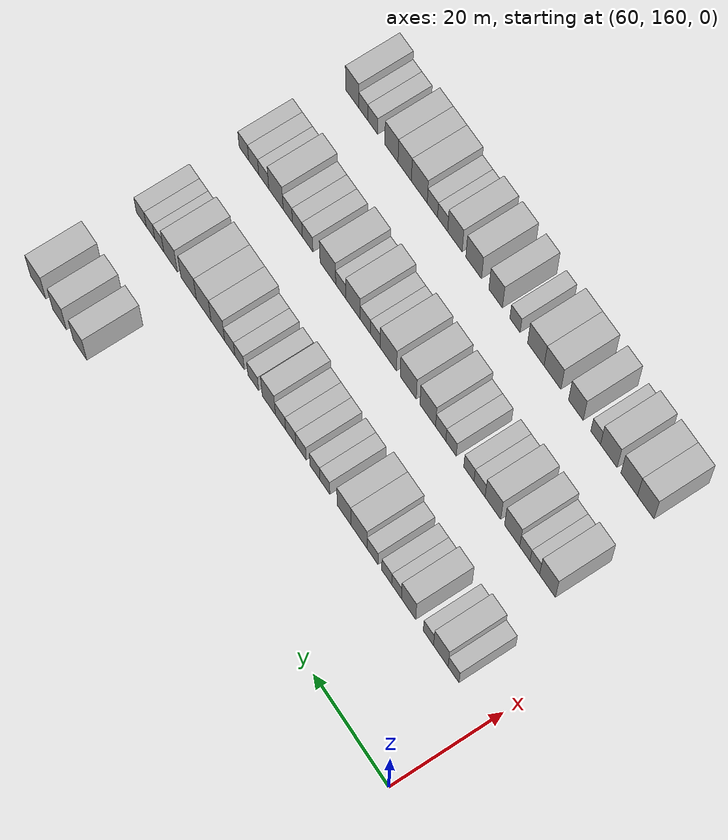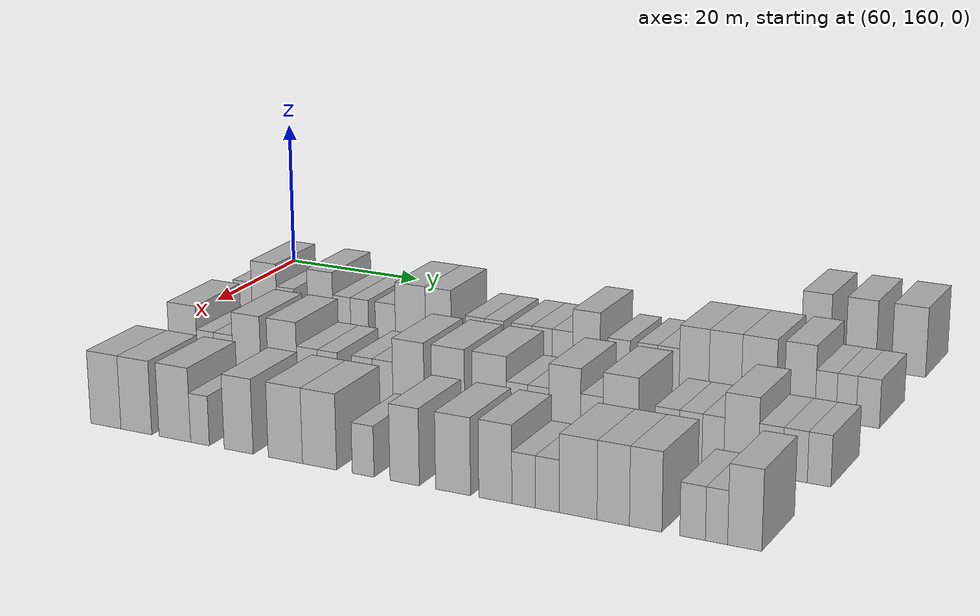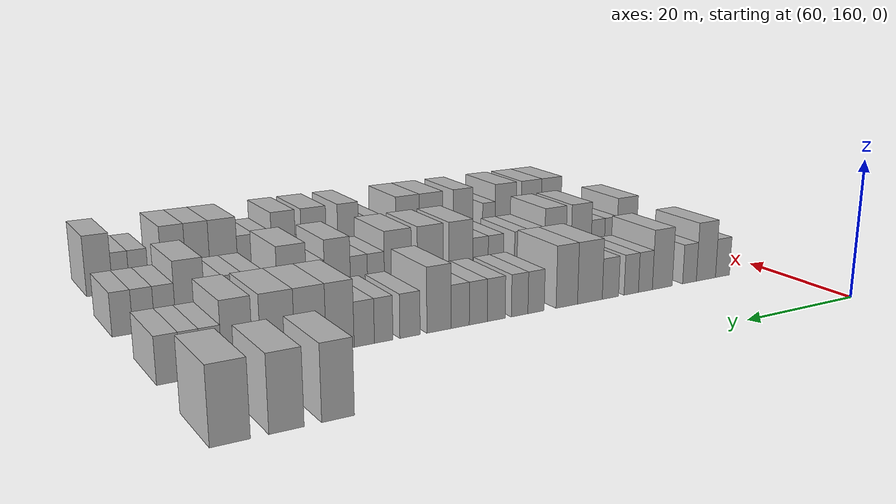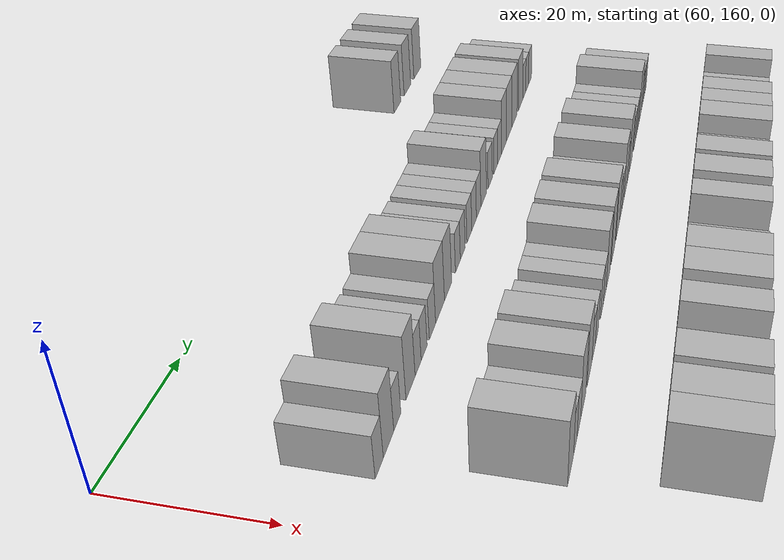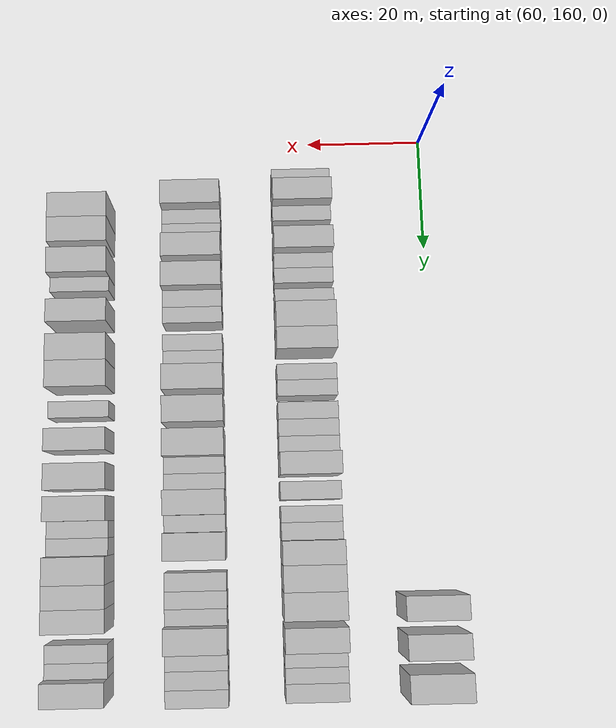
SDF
<sdf version="1.6">
 <world name="default">
  <model name="building_502">
   <static>1</static>
   <pose>63.0000 241.3219 0 0.000000 0.000000 0.000000</pose>
   <link name="link">
    <pose>0 0 4.50 0 0 0</pose>
    <collision name="collision"><geometry><box><size>10.0000 3.8423 9.0000</size></box></geometry></collision>
    <visual name="visual">
     <cast_shadows>0</cast_shadows>
     <geometry><box><size>10.0000 3.8423 9.0000</size></box></geometry>
     <material>
      <script>
       <uri>model://HANNAS_wall/materials/scripts</uri>
       <uri>model://HANNAS_wall/materials/textures</uri>
       <name>vrc/HANNAS_wall</name>
      </script>
     </material>
    </visual>
   </link>
  </model>
  <model name="building_503">
   <static>1</static>
   <pose>63.0000 247.2206 0 0.000000 0.000000 0.000000</pose>
   <link name="link">
    <pose>0 0 4.50 0 0 0</pose>
    <collision name="collision"><geometry><box><size>10.0000 3.9550 9.0000</size></box></geometry></collision>
    <visual name="visual">
     <cast_shadows>0</cast_shadows>
     <geometry><box><size>10.0000 3.9550 9.0000</size></box></geometry>
     <material>
      <script>
       <uri>model://HANNAS_wall/materials/scripts</uri>
       <uri>model://HANNAS_wall/materials/textures</uri>
       <name>vrc/HANNAS_wall</name>
      </script>
     </material>
    </visual>
   </link>
  </model>
  <model name="building_504">
   <static>1</static>
   <pose>63.0000 253.3838 0 0.000000 0.000000 0.000000</pose>
   <link name="link">
    <pose>0 0 4.50 0 0 0</pose>
    <collision name="collision"><geometry><box><size>10.0000 4.3716 9.0000</size></box></geometry></collision>
    <visual name="visual">
     <cast_shadows>0</cast_shadows>
     <geometry><box><size>10.0000 4.3716 9.0000</size></box></geometry>
     <material>
      <script>
       <uri>model://HANNAS_wall/materials/scripts</uri>
       <uri>model://HANNAS_wall/materials/textures</uri>
       <name>vrc/HANNAS_wall</name>
      </script>
     </material>
    </visual>
   </link>
  </model>
  <model name="building_665">
   <static>1</static>
   <pose>82.0000 168.6645 0 0.000000 0.000000 0.000000</pose>
   <link name="link">
    <pose>0 0 3.00 0 0 0</pose>
    <collision name="collision"><geometry><box><size>10.0000 2.8448 6.0000</size></box></geometry></collision>
    <visual name="visual">
     <cast_shadows>0</cast_shadows>
     <geometry><box><size>10.0000 2.8448 6.0000</size></box></geometry>
     <material>
      <script>
       <uri>model://HANNAS_wall/materials/scripts</uri>
       <uri>model://HANNAS_wall/materials/textures</uri>
       <name>vrc/HANNAS_wall</name>
      </script>
     </material>
    </visual>
   </link>
  </model>
  <model name="building_666">
   <static>1</static>
   <pose>82.0000 171.9915 0 0.000000 0.000000 0.000000</pose>
   <link name="link">
    <pose>0 0 4.50 0 0 0</pose>
    <collision name="collision"><geometry><box><size>10.0000 3.8090 9.0000</size></box></geometry></collision>
    <visual name="visual">
     <cast_shadows>0</cast_shadows>
     <geometry><box><size>10.0000 3.8090 9.0000</size></box></geometry>
     <material>
      <script>
       <uri>model://HANNAS_wall/materials/scripts</uri>
       <uri>model://HANNAS_wall/materials/textures</uri>
       <name>vrc/HANNAS_wall</name>
      </script>
     </material>
    </visual>
   </link>
  </model>
  <model name="building_667">
   <static>1</static>
   <pose>82.0000 175.2428 0 0.000000 0.000000 0.000000</pose>
   <link name="link">
    <pose>0 0 3.00 0 0 0</pose>
    <collision name="collision"><geometry><box><size>10.0000 2.6935 6.0000</size></box></geometry></collision>
    <visual name="visual">
     <cast_shadows>0</cast_shadows>
     <geometry><box><size>10.0000 2.6935 6.0000</size></box></geometry>
     <material>
      <script>
       <uri>model://HANNAS_wall/materials/scripts</uri>
       <uri>model://HANNAS_wall/materials/textures</uri>
       <name>vrc/HANNAS_wall</name>
      </script>
     </material>
    </visual>
   </link>
  </model>
  <model name="building_668">
   <static>1</static>
   <pose>82.0000 180.4787 0 0.000000 0.000000 0.000000</pose>
   <link name="link">
    <pose>0 0 4.50 0 0 0</pose>
    <collision name="collision"><geometry><box><size>10.0000 3.7783 9.0000</size></box></geometry></collision>
    <visual name="visual">
     <cast_shadows>0</cast_shadows>
     <geometry><box><size>10.0000 3.7783 9.0000</size></box></geometry>
     <material>
      <script>
       <uri>model://HANNAS_wall/materials/scripts</uri>
       <uri>model://HANNAS_wall/materials/textures</uri>
       <name>vrc/HANNAS_wall</name>
      </script>
     </material>
    </visual>
   </link>
  </model>
  <model name="building_669">
   <static>1</static>
   <pose>82.0000 183.6699 0 0.000000 0.000000 0.000000</pose>
   <link name="link">
    <pose>0 0 3.00 0 0 0</pose>
    <collision name="collision"><geometry><box><size>10.0000 2.6042 6.0000</size></box></geometry></collision>
    <visual name="visual">
     <cast_shadows>0</cast_shadows>
     <geometry><box><size>10.0000 2.6042 6.0000</size></box></geometry>
     <material>
      <script>
       <uri>model://HANNAS_wall/materials/scripts</uri>
       <uri>model://HANNAS_wall/materials/textures</uri>
       <name>vrc/HANNAS_wall</name>
      </script>
     </material>
    </visual>
   </link>
  </model>
  <model name="building_670">
   <static>1</static>
   <pose>82.0000 186.2871 0 0.000000 0.000000 0.000000</pose>
   <link name="link">
    <pose>0 0 3.00 0 0 0</pose>
    <collision name="collision"><geometry><box><size>10.0000 2.6302 6.0000</size></box></geometry></collision>
    <visual name="visual">
     <cast_shadows>0</cast_shadows>
     <geometry><box><size>10.0000 2.6302 6.0000</size></box></geometry>
     <material>
      <script>
       <uri>model://HANNAS_wall/materials/scripts</uri>
       <uri>model://HANNAS_wall/materials/textures</uri>
       <name>vrc/HANNAS_wall</name>
      </script>
     </material>
    </visual>
   </link>
  </model>
  <model name="building_671">
   <static>1</static>
   <pose>82.0000 190.0677 0 0.000000 0.000000 0.000000</pose>
   <link name="link">
    <pose>0 0 3.00 0 0 0</pose>
    <collision name="collision"><geometry><box><size>10.0000 2.9310 6.0000</size></box></geometry></collision>
    <visual name="visual">
     <cast_shadows>0</cast_shadows>
     <geometry><box><size>10.0000 2.9310 6.0000</size></box></geometry>
     <material>
      <script>
       <uri>model://HANNAS_wall/materials/scripts</uri>
       <uri>model://HANNAS_wall/materials/textures</uri>
       <name>vrc/HANNAS_wall</name>
      </script>
     </material>
    </visual>
   </link>
  </model>
  <model name="building_672">
   <static>1</static>
   <pose>82.0000 193.7044 0 0.000000 0.000000 0.000000</pose>
   <link name="link">
    <pose>0 0 4.50 0 0 0</pose>
    <collision name="collision"><geometry><box><size>10.0000 4.3425 9.0000</size></box></geometry></collision>
    <visual name="visual">
     <cast_shadows>0</cast_shadows>
     <geometry><box><size>10.0000 4.3425 9.0000</size></box></geometry>
     <material>
      <script>
       <uri>model://HANNAS_wall/materials/scripts</uri>
       <uri>model://HANNAS_wall/materials/textures</uri>
       <name>vrc/HANNAS_wall</name>
      </script>
     </material>
    </visual>
   </link>
  </model>
  <model name="building_673">
   <static>1</static>
   <pose>82.0000 197.7130 0 0.000000 0.000000 0.000000</pose>
   <link name="link">
    <pose>0 0 4.50 0 0 0</pose>
    <collision name="collision"><geometry><box><size>10.0000 3.6748 9.0000</size></box></geometry></collision>
    <visual name="visual">
     <cast_shadows>0</cast_shadows>
     <geometry><box><size>10.0000 3.6748 9.0000</size></box></geometry>
     <material>
      <script>
       <uri>model://HANNAS_wall/materials/scripts</uri>
       <uri>model://HANNAS_wall/materials/textures</uri>
       <name>vrc/HANNAS_wall</name>
      </script>
     </material>
    </visual>
   </link>
  </model>
  <model name="building_674">
   <static>1</static>
   <pose>82.0000 202.9010 0 0.000000 0.000000 0.000000</pose>
   <link name="link">
    <pose>0 0 3.00 0 0 0</pose>
    <collision name="collision"><geometry><box><size>10.0000 2.7012 6.0000</size></box></geometry></collision>
    <visual name="visual">
     <cast_shadows>0</cast_shadows>
     <geometry><box><size>10.0000 2.7012 6.0000</size></box></geometry>
     <material>
      <script>
       <uri>model://HANNAS_wall/materials/scripts</uri>
       <uri>model://HANNAS_wall/materials/textures</uri>
       <name>vrc/HANNAS_wall</name>
      </script>
     </material>
    </visual>
   </link>
  </model>
  <model name="building_675">
   <static>1</static>
   <pose>82.0000 205.6040 0 0.000000 0.000000 0.000000</pose>
   <link name="link">
    <pose>0 0 3.00 0 0 0</pose>
    <collision name="collision"><geometry><box><size>10.0000 2.7048 6.0000</size></box></geometry></collision>
    <visual name="visual">
     <cast_shadows>0</cast_shadows>
     <geometry><box><size>10.0000 2.7048 6.0000</size></box></geometry>
     <material>
      <script>
       <uri>model://HANNAS_wall/materials/scripts</uri>
       <uri>model://HANNAS_wall/materials/textures</uri>
       <name>vrc/HANNAS_wall</name>
      </script>
     </material>
    </visual>
   </link>
  </model>
  <model name="building_676">
   <static>1</static>
   <pose>82.0000 209.3820 0 0.000000 0.000000 0.000000</pose>
   <link name="link">
    <pose>0 0 3.00 0 0 0</pose>
    <collision name="collision"><geometry><box><size>10.0000 2.8511 6.0000</size></box></geometry></collision>
    <visual name="visual">
     <cast_shadows>0</cast_shadows>
     <geometry><box><size>10.0000 2.8511 6.0000</size></box></geometry>
     <material>
      <script>
       <uri>model://HANNAS_wall/materials/scripts</uri>
       <uri>model://HANNAS_wall/materials/textures</uri>
       <name>vrc/HANNAS_wall</name>
      </script>
     </material>
    </visual>
   </link>
  </model>
  <model name="building_677">
   <static>1</static>
   <pose>82.0000 212.2153 0 0.000000 0.000000 0.000000</pose>
   <link name="link">
    <pose>0 0 3.00 0 0 0</pose>
    <collision name="collision"><geometry><box><size>10.0000 2.8153 6.0000</size></box></geometry></collision>
    <visual name="visual">
     <cast_shadows>0</cast_shadows>
     <geometry><box><size>10.0000 2.8153 6.0000</size></box></geometry>
     <material>
      <script>
       <uri>model://HANNAS_wall/materials/scripts</uri>
       <uri>model://HANNAS_wall/materials/textures</uri>
       <name>vrc/HANNAS_wall</name>
      </script>
     </material>
    </visual>
   </link>
  </model>
  <model name="building_678">
   <static>1</static>
   <pose>82.0000 215.0192 0 0.000000 0.000000 0.000000</pose>
   <link name="link">
    <pose>0 0 3.00 0 0 0</pose>
    <collision name="collision"><geometry><box><size>10.0000 2.7925 6.0000</size></box></geometry></collision>
    <visual name="visual">
     <cast_shadows>0</cast_shadows>
     <geometry><box><size>10.0000 2.7925 6.0000</size></box></geometry>
     <material>
      <script>
       <uri>model://HANNAS_wall/materials/scripts</uri>
       <uri>model://HANNAS_wall/materials/textures</uri>
       <name>vrc/HANNAS_wall</name>
      </script>
     </material>
    </visual>
   </link>
  </model>
  <model name="building_679">
   <static>1</static>
   <pose>82.0000 218.2377 0 0.000000 0.000000 0.000000</pose>
   <link name="link">
    <pose>0 0 4.50 0 0 0</pose>
    <collision name="collision"><geometry><box><size>10.0000 3.6446 9.0000</size></box></geometry></collision>
    <visual name="visual">
     <cast_shadows>0</cast_shadows>
     <geometry><box><size>10.0000 3.6446 9.0000</size></box></geometry>
     <material>
      <script>
       <uri>model://HANNAS_wall/materials/scripts</uri>
       <uri>model://HANNAS_wall/materials/textures</uri>
       <name>vrc/HANNAS_wall</name>
      </script>
     </material>
    </visual>
   </link>
  </model>
  <model name="building_680">
   <static>1</static>
   <pose>82.0000 222.5443 0 0.000000 0.000000 0.000000</pose>
   <link name="link">
    <pose>0 0 3.00 0 0 0</pose>
    <collision name="collision"><geometry><box><size>10.0000 2.9686 6.0000</size></box></geometry></collision>
    <visual name="visual">
     <cast_shadows>0</cast_shadows>
     <geometry><box><size>10.0000 2.9686 6.0000</size></box></geometry>
     <material>
      <script>
       <uri>model://HANNAS_wall/materials/scripts</uri>
       <uri>model://HANNAS_wall/materials/textures</uri>
       <name>vrc/HANNAS_wall</name>
      </script>
     </material>
    </visual>
   </link>
  </model>
  <model name="building_681">
   <static>1</static>
   <pose>82.0000 226.3462 0 0.000000 0.000000 0.000000</pose>
   <link name="link">
    <pose>0 0 3.00 0 0 0</pose>
    <collision name="collision"><geometry><box><size>10.0000 2.6352 6.0000</size></box></geometry></collision>
    <visual name="visual">
     <cast_shadows>0</cast_shadows>
     <geometry><box><size>10.0000 2.6352 6.0000</size></box></geometry>
     <material>
      <script>
       <uri>model://HANNAS_wall/materials/scripts</uri>
       <uri>model://HANNAS_wall/materials/textures</uri>
       <name>vrc/HANNAS_wall</name>
      </script>
     </material>
    </visual>
   </link>
  </model>
  <model name="building_682">
   <static>1</static>
   <pose>82.0000 229.0832 0 0.000000 0.000000 0.000000</pose>
   <link name="link">
    <pose>0 0 3.00 0 0 0</pose>
    <collision name="collision"><geometry><box><size>10.0000 2.8388 6.0000</size></box></geometry></collision>
    <visual name="visual">
     <cast_shadows>0</cast_shadows>
     <geometry><box><size>10.0000 2.8388 6.0000</size></box></geometry>
     <material>
      <script>
       <uri>model://HANNAS_wall/materials/scripts</uri>
       <uri>model://HANNAS_wall/materials/textures</uri>
       <name>vrc/HANNAS_wall</name>
      </script>
     </material>
    </visual>
   </link>
  </model>
  <model name="building_683">
   <static>1</static>
   <pose>82.0000 232.4106 0 0.000000 0.000000 0.000000</pose>
   <link name="link">
    <pose>0 0 4.50 0 0 0</pose>
    <collision name="collision"><geometry><box><size>10.0000 3.8159 9.0000</size></box></geometry></collision>
    <visual name="visual">
     <cast_shadows>0</cast_shadows>
     <geometry><box><size>10.0000 3.8159 9.0000</size></box></geometry>
     <material>
      <script>
       <uri>model://HANNAS_wall/materials/scripts</uri>
       <uri>model://HANNAS_wall/materials/textures</uri>
       <name>vrc/HANNAS_wall</name>
      </script>
     </material>
    </visual>
   </link>
  </model>
  <model name="building_684">
   <static>1</static>
   <pose>82.0000 236.3957 0 0.000000 0.000000 0.000000</pose>
   <link name="link">
    <pose>0 0 4.50 0 0 0</pose>
    <collision name="collision"><geometry><box><size>10.0000 4.1543 9.0000</size></box></geometry></collision>
    <visual name="visual">
     <cast_shadows>0</cast_shadows>
     <geometry><box><size>10.0000 4.1543 9.0000</size></box></geometry>
     <material>
      <script>
       <uri>model://HANNAS_wall/materials/scripts</uri>
       <uri>model://HANNAS_wall/materials/textures</uri>
       <name>vrc/HANNAS_wall</name>
      </script>
     </material>
    </visual>
   </link>
  </model>
  <model name="building_685">
   <static>1</static>
   <pose>82.0000 240.6658 0 0.000000 0.000000 0.000000</pose>
   <link name="link">
    <pose>0 0 4.50 0 0 0</pose>
    <collision name="collision"><geometry><box><size>10.0000 4.3861 9.0000</size></box></geometry></collision>
    <visual name="visual">
     <cast_shadows>0</cast_shadows>
     <geometry><box><size>10.0000 4.3861 9.0000</size></box></geometry>
     <material>
      <script>
       <uri>model://HANNAS_wall/materials/scripts</uri>
       <uri>model://HANNAS_wall/materials/textures</uri>
       <name>vrc/HANNAS_wall</name>
      </script>
     </material>
    </visual>
   </link>
  </model>
  <model name="building_686">
   <static>1</static>
   <pose>82.0000 245.7829 0 0.000000 0.000000 0.000000</pose>
   <link name="link">
    <pose>0 0 4.50 0 0 0</pose>
    <collision name="collision"><geometry><box><size>10.0000 3.8481 9.0000</size></box></geometry></collision>
    <visual name="visual">
     <cast_shadows>0</cast_shadows>
     <geometry><box><size>10.0000 3.8481 9.0000</size></box></geometry>
     <material>
      <script>
       <uri>model://HANNAS_wall/materials/scripts</uri>
       <uri>model://HANNAS_wall/materials/textures</uri>
       <name>vrc/HANNAS_wall</name>
      </script>
     </material>
    </visual>
   </link>
  </model>
  <model name="building_687">
   <static>1</static>
   <pose>82.0000 249.0033 0 0.000000 0.000000 0.000000</pose>
   <link name="link">
    <pose>0 0 3.00 0 0 0</pose>
    <collision name="collision"><geometry><box><size>10.0000 2.5929 6.0000</size></box></geometry></collision>
    <visual name="visual">
     <cast_shadows>0</cast_shadows>
     <geometry><box><size>10.0000 2.5929 6.0000</size></box></geometry>
     <material>
      <script>
       <uri>model://HANNAS_wall/materials/scripts</uri>
       <uri>model://HANNAS_wall/materials/textures</uri>
       <name>vrc/HANNAS_wall</name>
      </script>
     </material>
    </visual>
   </link>
  </model>
  <model name="building_688">
   <static>1</static>
   <pose>82.0000 251.5186 0 0.000000 0.000000 0.000000</pose>
   <link name="link">
    <pose>0 0 3.00 0 0 0</pose>
    <collision name="collision"><geometry><box><size>10.0000 2.4376 6.0000</size></box></geometry></collision>
    <visual name="visual">
     <cast_shadows>0</cast_shadows>
     <geometry><box><size>10.0000 2.4376 6.0000</size></box></geometry>
     <material>
      <script>
       <uri>model://HANNAS_wall/materials/scripts</uri>
       <uri>model://HANNAS_wall/materials/textures</uri>
       <name>vrc/HANNAS_wall</name>
      </script>
     </material>
    </visual>
   </link>
  </model>
  <model name="building_689">
   <static>1</static>
   <pose>82.0000 254.1609 0 0.000000 0.000000 0.000000</pose>
   <link name="link">
    <pose>0 0 3.00 0 0 0</pose>
    <collision name="collision"><geometry><box><size>10.0000 2.8471 6.0000</size></box></geometry></collision>
    <visual name="visual">
     <cast_shadows>0</cast_shadows>
     <geometry><box><size>10.0000 2.8471 6.0000</size></box></geometry>
     <material>
      <script>
       <uri>model://HANNAS_wall/materials/scripts</uri>
       <uri>model://HANNAS_wall/materials/textures</uri>
       <name>vrc/HANNAS_wall</name>
      </script>
     </material>
    </visual>
   </link>
  </model>
  <model name="building_850">
   <static>1</static>
   <pose>101.0000 172.1074 0 0.000000 0.000000 0.000000</pose>
   <link name="link">
    <pose>0 0 4.50 0 0 0</pose>
    <collision name="collision"><geometry><box><size>10.0000 4.1197 9.0000</size></box></geometry></collision>
    <visual name="visual">
     <cast_shadows>0</cast_shadows>
     <geometry><box><size>10.0000 4.1197 9.0000</size></box></geometry>
     <material>
      <script>
       <uri>model://HANNAS_wall/materials/scripts</uri>
       <uri>model://HANNAS_wall/materials/textures</uri>
       <name>vrc/HANNAS_wall</name>
      </script>
     </material>
    </visual>
   </link>
  </model>
  <model name="building_851">
   <static>1</static>
   <pose>101.0000 175.4219 0 0.000000 0.000000 0.000000</pose>
   <link name="link">
    <pose>0 0 3.00 0 0 0</pose>
    <collision name="collision"><geometry><box><size>10.0000 2.5093 6.0000</size></box></geometry></collision>
    <visual name="visual">
     <cast_shadows>0</cast_shadows>
     <geometry><box><size>10.0000 2.5093 6.0000</size></box></geometry>
     <material>
      <script>
       <uri>model://HANNAS_wall/materials/scripts</uri>
       <uri>model://HANNAS_wall/materials/textures</uri>
       <name>vrc/HANNAS_wall</name>
      </script>
     </material>
    </visual>
   </link>
  </model>
  <model name="building_852">
   <static>1</static>
   <pose>101.0000 178.0167 0 0.000000 0.000000 0.000000</pose>
   <link name="link">
    <pose>0 0 3.00 0 0 0</pose>
    <collision name="collision"><geometry><box><size>10.0000 2.6804 6.0000</size></box></geometry></collision>
    <visual name="visual">
     <cast_shadows>0</cast_shadows>
     <geometry><box><size>10.0000 2.6804 6.0000</size></box></geometry>
     <material>
      <script>
       <uri>model://HANNAS_wall/materials/scripts</uri>
       <uri>model://HANNAS_wall/materials/textures</uri>
       <name>vrc/HANNAS_wall</name>
      </script>
     </material>
    </visual>
   </link>
  </model>
  <model name="building_853">
   <static>1</static>
   <pose>101.0000 181.3495 0 0.000000 0.000000 0.000000</pose>
   <link name="link">
    <pose>0 0 4.50 0 0 0</pose>
    <collision name="collision"><geometry><box><size>10.0000 3.9852 9.0000</size></box></geometry></collision>
    <visual name="visual">
     <cast_shadows>0</cast_shadows>
     <geometry><box><size>10.0000 3.9852 9.0000</size></box></geometry>
     <material>
      <script>
       <uri>model://HANNAS_wall/materials/scripts</uri>
       <uri>model://HANNAS_wall/materials/textures</uri>
       <name>vrc/HANNAS_wall</name>
      </script>
     </material>
    </visual>
   </link>
  </model>
  <model name="building_854">
   <static>1</static>
   <pose>101.0000 186.4032 0 0.000000 0.000000 0.000000</pose>
   <link name="link">
    <pose>0 0 4.50 0 0 0</pose>
    <collision name="collision"><geometry><box><size>10.0000 4.1222 9.0000</size></box></geometry></collision>
    <visual name="visual">
     <cast_shadows>0</cast_shadows>
     <geometry><box><size>10.0000 4.1222 9.0000</size></box></geometry>
     <material>
      <script>
       <uri>model://HANNAS_wall/materials/scripts</uri>
       <uri>model://HANNAS_wall/materials/textures</uri>
       <name>vrc/HANNAS_wall</name>
      </script>
     </material>
    </visual>
   </link>
  </model>
  <model name="building_855">
   <static>1</static>
   <pose>101.0000 189.9338 0 0.000000 0.000000 0.000000</pose>
   <link name="link">
    <pose>0 0 3.00 0 0 0</pose>
    <collision name="collision"><geometry><box><size>10.0000 2.9389 6.0000</size></box></geometry></collision>
    <visual name="visual">
     <cast_shadows>0</cast_shadows>
     <geometry><box><size>10.0000 2.9389 6.0000</size></box></geometry>
     <material>
      <script>
       <uri>model://HANNAS_wall/materials/scripts</uri>
       <uri>model://HANNAS_wall/materials/textures</uri>
       <name>vrc/HANNAS_wall</name>
      </script>
     </material>
    </visual>
   </link>
  </model>
  <model name="building_856">
   <static>1</static>
   <pose>101.0000 192.7658 0 0.000000 0.000000 0.000000</pose>
   <link name="link">
    <pose>0 0 3.00 0 0 0</pose>
    <collision name="collision"><geometry><box><size>10.0000 2.7251 6.0000</size></box></geometry></collision>
    <visual name="visual">
     <cast_shadows>0</cast_shadows>
     <geometry><box><size>10.0000 2.7251 6.0000</size></box></geometry>
     <material>
      <script>
       <uri>model://HANNAS_wall/materials/scripts</uri>
       <uri>model://HANNAS_wall/materials/textures</uri>
       <name>vrc/HANNAS_wall</name>
      </script>
     </material>
    </visual>
   </link>
  </model>
  <model name="building_857">
   <static>1</static>
   <pose>101.0000 197.5226 0 0.000000 0.000000 0.000000</pose>
   <link name="link">
    <pose>0 0 3.00 0 0 0</pose>
    <collision name="collision"><geometry><box><size>10.0000 2.7884 6.0000</size></box></geometry></collision>
    <visual name="visual">
     <cast_shadows>0</cast_shadows>
     <geometry><box><size>10.0000 2.7884 6.0000</size></box></geometry>
     <material>
      <script>
       <uri>model://HANNAS_wall/materials/scripts</uri>
       <uri>model://HANNAS_wall/materials/textures</uri>
       <name>vrc/HANNAS_wall</name>
      </script>
     </material>
    </visual>
   </link>
  </model>
  <model name="building_858">
   <static>1</static>
   <pose>101.0000 200.2890 0 0.000000 0.000000 0.000000</pose>
   <link name="link">
    <pose>0 0 3.00 0 0 0</pose>
    <collision name="collision"><geometry><box><size>10.0000 2.7445 6.0000</size></box></geometry></collision>
    <visual name="visual">
     <cast_shadows>0</cast_shadows>
     <geometry><box><size>10.0000 2.7445 6.0000</size></box></geometry>
     <material>
      <script>
       <uri>model://HANNAS_wall/materials/scripts</uri>
       <uri>model://HANNAS_wall/materials/textures</uri>
       <name>vrc/HANNAS_wall</name>
      </script>
     </material>
    </visual>
   </link>
  </model>
  <model name="building_859">
   <static>1</static>
   <pose>101.0000 203.7622 0 0.000000 0.000000 0.000000</pose>
   <link name="link">
    <pose>0 0 4.50 0 0 0</pose>
    <collision name="collision"><geometry><box><size>10.0000 4.2019 9.0000</size></box></geometry></collision>
    <visual name="visual">
     <cast_shadows>0</cast_shadows>
     <geometry><box><size>10.0000 4.2019 9.0000</size></box></geometry>
     <material>
      <script>
       <uri>model://HANNAS_wall/materials/scripts</uri>
       <uri>model://HANNAS_wall/materials/textures</uri>
       <name>vrc/HANNAS_wall</name>
      </script>
     </material>
    </visual>
   </link>
  </model>
  <model name="building_860">
   <static>1</static>
   <pose>101.0000 209.0385 0 0.000000 0.000000 0.000000</pose>
   <link name="link">
    <pose>0 0 4.50 0 0 0</pose>
    <collision name="collision"><geometry><box><size>10.0000 4.3506 9.0000</size></box></geometry></collision>
    <visual name="visual">
     <cast_shadows>0</cast_shadows>
     <geometry><box><size>10.0000 4.3506 9.0000</size></box></geometry>
     <material>
      <script>
       <uri>model://HANNAS_wall/materials/scripts</uri>
       <uri>model://HANNAS_wall/materials/textures</uri>
       <name>vrc/HANNAS_wall</name>
      </script>
     </material>
    </visual>
   </link>
  </model>
  <model name="building_861">
   <static>1</static>
   <pose>101.0000 214.4427 0 0.000000 0.000000 0.000000</pose>
   <link name="link">
    <pose>0 0 4.50 0 0 0</pose>
    <collision name="collision"><geometry><box><size>10.0000 4.4578 9.0000</size></box></geometry></collision>
    <visual name="visual">
     <cast_shadows>0</cast_shadows>
     <geometry><box><size>10.0000 4.4578 9.0000</size></box></geometry>
     <material>
      <script>
       <uri>model://HANNAS_wall/materials/scripts</uri>
       <uri>model://HANNAS_wall/materials/textures</uri>
       <name>vrc/HANNAS_wall</name>
      </script>
     </material>
    </visual>
   </link>
  </model>
  <model name="building_862">
   <static>1</static>
   <pose>101.0000 218.0319 0 0.000000 0.000000 0.000000</pose>
   <link name="link">
    <pose>0 0 3.00 0 0 0</pose>
    <collision name="collision"><geometry><box><size>10.0000 2.7208 6.0000</size></box></geometry></collision>
    <visual name="visual">
     <cast_shadows>0</cast_shadows>
     <geometry><box><size>10.0000 2.7208 6.0000</size></box></geometry>
     <material>
      <script>
       <uri>model://HANNAS_wall/materials/scripts</uri>
       <uri>model://HANNAS_wall/materials/textures</uri>
       <name>vrc/HANNAS_wall</name>
      </script>
     </material>
    </visual>
   </link>
  </model>
  <model name="building_863">
   <static>1</static>
   <pose>101.0000 220.7425 0 0.000000 0.000000 0.000000</pose>
   <link name="link">
    <pose>0 0 3.00 0 0 0</pose>
    <collision name="collision"><geometry><box><size>10.0000 2.7003 6.0000</size></box></geometry></collision>
    <visual name="visual">
     <cast_shadows>0</cast_shadows>
     <geometry><box><size>10.0000 2.7003 6.0000</size></box></geometry>
     <material>
      <script>
       <uri>model://HANNAS_wall/materials/scripts</uri>
       <uri>model://HANNAS_wall/materials/textures</uri>
       <name>vrc/HANNAS_wall</name>
      </script>
     </material>
    </visual>
   </link>
  </model>
  <model name="building_864">
   <static>1</static>
   <pose>101.0000 224.0900 0 0.000000 0.000000 0.000000</pose>
   <link name="link">
    <pose>0 0 4.50 0 0 0</pose>
    <collision name="collision"><geometry><box><size>10.0000 3.9947 9.0000</size></box></geometry></collision>
    <visual name="visual">
     <cast_shadows>0</cast_shadows>
     <geometry><box><size>10.0000 3.9947 9.0000</size></box></geometry>
     <material>
      <script>
       <uri>model://HANNAS_wall/materials/scripts</uri>
       <uri>model://HANNAS_wall/materials/textures</uri>
       <name>vrc/HANNAS_wall</name>
      </script>
     </material>
    </visual>
   </link>
  </model>
  <model name="building_865">
   <static>1</static>
   <pose>101.0000 227.4783 0 0.000000 0.000000 0.000000</pose>
   <link name="link">
    <pose>0 0 3.00 0 0 0</pose>
    <collision name="collision"><geometry><box><size>10.0000 2.7820 6.0000</size></box></geometry></collision>
    <visual name="visual">
     <cast_shadows>0</cast_shadows>
     <geometry><box><size>10.0000 2.7820 6.0000</size></box></geometry>
     <material>
      <script>
       <uri>model://HANNAS_wall/materials/scripts</uri>
       <uri>model://HANNAS_wall/materials/textures</uri>
       <name>vrc/HANNAS_wall</name>
      </script>
     </material>
    </visual>
   </link>
  </model>
  <model name="building_866">
   <static>1</static>
   <pose>101.0000 231.0455 0 0.000000 0.000000 0.000000</pose>
   <link name="link">
    <pose>0 0 4.50 0 0 0</pose>
    <collision name="collision"><geometry><box><size>10.0000 4.3523 9.0000</size></box></geometry></collision>
    <visual name="visual">
     <cast_shadows>0</cast_shadows>
     <geometry><box><size>10.0000 4.3523 9.0000</size></box></geometry>
     <material>
      <script>
       <uri>model://HANNAS_wall/materials/scripts</uri>
       <uri>model://HANNAS_wall/materials/textures</uri>
       <name>vrc/HANNAS_wall</name>
      </script>
     </material>
    </visual>
   </link>
  </model>
  <model name="building_867">
   <static>1</static>
   <pose>101.0000 236.6906 0 0.000000 0.000000 0.000000</pose>
   <link name="link">
    <pose>0 0 3.00 0 0 0</pose>
    <collision name="collision"><geometry><box><size>10.0000 2.9380 6.0000</size></box></geometry></collision>
    <visual name="visual">
     <cast_shadows>0</cast_shadows>
     <geometry><box><size>10.0000 2.9380 6.0000</size></box></geometry>
     <material>
      <script>
       <uri>model://HANNAS_wall/materials/scripts</uri>
       <uri>model://HANNAS_wall/materials/textures</uri>
       <name>vrc/HANNAS_wall</name>
      </script>
     </material>
    </visual>
   </link>
  </model>
  <model name="building_868">
   <static>1</static>
   <pose>101.0000 239.5459 0 0.000000 0.000000 0.000000</pose>
   <link name="link">
    <pose>0 0 3.00 0 0 0</pose>
    <collision name="collision"><geometry><box><size>10.0000 2.7726 6.0000</size></box></geometry></collision>
    <visual name="visual">
     <cast_shadows>0</cast_shadows>
     <geometry><box><size>10.0000 2.7726 6.0000</size></box></geometry>
     <material>
      <script>
       <uri>model://HANNAS_wall/materials/scripts</uri>
       <uri>model://HANNAS_wall/materials/textures</uri>
       <name>vrc/HANNAS_wall</name>
      </script>
     </material>
    </visual>
   </link>
  </model>
  <model name="building_869">
   <static>1</static>
   <pose>101.0000 242.2371 0 0.000000 0.000000 0.000000</pose>
   <link name="link">
    <pose>0 0 3.00 0 0 0</pose>
    <collision name="collision"><geometry><box><size>10.0000 2.6098 6.0000</size></box></geometry></collision>
    <visual name="visual">
     <cast_shadows>0</cast_shadows>
     <geometry><box><size>10.0000 2.6098 6.0000</size></box></geometry>
     <material>
      <script>
       <uri>model://HANNAS_wall/materials/scripts</uri>
       <uri>model://HANNAS_wall/materials/textures</uri>
       <name>vrc/HANNAS_wall</name>
      </script>
     </material>
    </visual>
   </link>
  </model>
  <model name="building_870">
   <static>1</static>
   <pose>101.0000 245.5750 0 0.000000 0.000000 0.000000</pose>
   <link name="link">
    <pose>0 0 4.50 0 0 0</pose>
    <collision name="collision"><geometry><box><size>10.0000 4.0660 9.0000</size></box></geometry></collision>
    <visual name="visual">
     <cast_shadows>0</cast_shadows>
     <geometry><box><size>10.0000 4.0660 9.0000</size></box></geometry>
     <material>
      <script>
       <uri>model://HANNAS_wall/materials/scripts</uri>
       <uri>model://HANNAS_wall/materials/textures</uri>
       <name>vrc/HANNAS_wall</name>
      </script>
     </material>
    </visual>
   </link>
  </model>
  <model name="building_871">
   <static>1</static>
   <pose>101.0000 249.0263 0 0.000000 0.000000 0.000000</pose>
   <link name="link">
    <pose>0 0 3.00 0 0 0</pose>
    <collision name="collision"><geometry><box><size>10.0000 2.8367 6.0000</size></box></geometry></collision>
    <visual name="visual">
     <cast_shadows>0</cast_shadows>
     <geometry><box><size>10.0000 2.8367 6.0000</size></box></geometry>
     <material>
      <script>
       <uri>model://HANNAS_wall/materials/scripts</uri>
       <uri>model://HANNAS_wall/materials/textures</uri>
       <name>vrc/HANNAS_wall</name>
      </script>
     </material>
    </visual>
   </link>
  </model>
  <model name="building_872">
   <static>1</static>
   <pose>101.0000 251.8733 0 0.000000 0.000000 0.000000</pose>
   <link name="link">
    <pose>0 0 3.00 0 0 0</pose>
    <collision name="collision"><geometry><box><size>10.0000 2.8573 6.0000</size></box></geometry></collision>
    <visual name="visual">
     <cast_shadows>0</cast_shadows>
     <geometry><box><size>10.0000 2.8573 6.0000</size></box></geometry>
     <material>
      <script>
       <uri>model://HANNAS_wall/materials/scripts</uri>
       <uri>model://HANNAS_wall/materials/textures</uri>
       <name>vrc/HANNAS_wall</name>
      </script>
     </material>
    </visual>
   </link>
  </model>
  <model name="building_873">
   <static>1</static>
   <pose>101.0000 254.6574 0 0.000000 0.000000 0.000000</pose>
   <link name="link">
    <pose>0 0 3.00 0 0 0</pose>
    <collision name="collision"><geometry><box><size>10.0000 2.7108 6.0000</size></box></geometry></collision>
    <visual name="visual">
     <cast_shadows>0</cast_shadows>
     <geometry><box><size>10.0000 2.7108 6.0000</size></box></geometry>
     <material>
      <script>
       <uri>model://HANNAS_wall/materials/scripts</uri>
       <uri>model://HANNAS_wall/materials/textures</uri>
       <name>vrc/HANNAS_wall</name>
      </script>
     </material>
    </visual>
   </link>
  </model>
  <model name="building_1021">
   <static>1</static>
   <pose>120.0000 173.9885 0 0.000000 0.000000 0.000000</pose>
   <link name="link">
    <pose>0 0 4.50 0 0 0</pose>
    <collision name="collision"><geometry><box><size>10.0000 4.2586 9.0000</size></box></geometry></collision>
    <visual name="visual">
     <cast_shadows>0</cast_shadows>
     <geometry><box><size>10.0000 4.2586 9.0000</size></box></geometry>
     <material>
      <script>
       <uri>model://HANNAS_wall/materials/scripts</uri>
       <uri>model://HANNAS_wall/materials/textures</uri>
       <name>vrc/HANNAS_wall</name>
      </script>
     </material>
    </visual>
   </link>
  </model>
  <model name="building_1022">
   <static>1</static>
   <pose>120.0000 178.2623 0 0.000000 0.000000 0.000000</pose>
   <link name="link">
    <pose>0 0 4.50 0 0 0</pose>
    <collision name="collision"><geometry><box><size>10.0000 4.2890 9.0000</size></box></geometry></collision>
    <visual name="visual">
     <cast_shadows>0</cast_shadows>
     <geometry><box><size>10.0000 4.2890 9.0000</size></box></geometry>
     <material>
      <script>
       <uri>model://HANNAS_wall/materials/scripts</uri>
       <uri>model://HANNAS_wall/materials/textures</uri>
       <name>vrc/HANNAS_wall</name>
      </script>
     </material>
    </visual>
   </link>
  </model>
  <model name="building_1023">
   <static>1</static>
   <pose>120.0000 183.5771 0 0.000000 0.000000 0.000000</pose>
   <link name="link">
    <pose>0 0 4.50 0 0 0</pose>
    <collision name="collision"><geometry><box><size>10.0000 4.3406 9.0000</size></box></geometry></collision>
    <visual name="visual">
     <cast_shadows>0</cast_shadows>
     <geometry><box><size>10.0000 4.3406 9.0000</size></box></geometry>
     <material>
      <script>
       <uri>model://HANNAS_wall/materials/scripts</uri>
       <uri>model://HANNAS_wall/materials/textures</uri>
       <name>vrc/HANNAS_wall</name>
      </script>
     </material>
    </visual>
   </link>
  </model>
  <model name="building_1024">
   <static>1</static>
   <pose>120.0000 187.0145 0 0.000000 0.000000 0.000000</pose>
   <link name="link">
    <pose>0 0 3.00 0 0 0</pose>
    <collision name="collision"><geometry><box><size>10.0000 2.5342 6.0000</size></box></geometry></collision>
    <visual name="visual">
     <cast_shadows>0</cast_shadows>
     <geometry><box><size>10.0000 2.5342 6.0000</size></box></geometry>
     <material>
      <script>
       <uri>model://HANNAS_wall/materials/scripts</uri>
       <uri>model://HANNAS_wall/materials/textures</uri>
       <name>vrc/HANNAS_wall</name>
      </script>
     </material>
    </visual>
   </link>
  </model>
  <model name="building_1025">
   <static>1</static>
   <pose>120.0000 192.2142 0 0.000000 0.000000 0.000000</pose>
   <link name="link">
    <pose>0 0 4.50 0 0 0</pose>
    <collision name="collision"><geometry><box><size>10.0000 3.8652 9.0000</size></box></geometry></collision>
    <visual name="visual">
     <cast_shadows>0</cast_shadows>
     <geometry><box><size>10.0000 3.8652 9.0000</size></box></geometry>
     <material>
      <script>
       <uri>model://HANNAS_wall/materials/scripts</uri>
       <uri>model://HANNAS_wall/materials/textures</uri>
       <name>vrc/HANNAS_wall</name>
      </script>
     </material>
    </visual>
   </link>
  </model>
  <model name="building_1026">
   <static>1</static>
   <pose>120.0000 198.3822 0 0.000000 0.000000 0.000000</pose>
   <link name="link">
    <pose>0 0 4.50 0 0 0</pose>
    <collision name="collision"><geometry><box><size>10.0000 4.4707 9.0000</size></box></geometry></collision>
    <visual name="visual">
     <cast_shadows>0</cast_shadows>
     <geometry><box><size>10.0000 4.4707 9.0000</size></box></geometry>
     <material>
      <script>
       <uri>model://HANNAS_wall/materials/scripts</uri>
       <uri>model://HANNAS_wall/materials/textures</uri>
       <name>vrc/HANNAS_wall</name>
      </script>
     </material>
    </visual>
   </link>
  </model>
  <model name="building_1027">
   <static>1</static>
   <pose>120.0000 202.8163 0 0.000000 0.000000 0.000000</pose>
   <link name="link">
    <pose>0 0 4.50 0 0 0</pose>
    <collision name="collision"><geometry><box><size>10.0000 4.3975 9.0000</size></box></geometry></collision>
    <visual name="visual">
     <cast_shadows>0</cast_shadows>
     <geometry><box><size>10.0000 4.3975 9.0000</size></box></geometry>
     <material>
      <script>
       <uri>model://HANNAS_wall/materials/scripts</uri>
       <uri>model://HANNAS_wall/materials/textures</uri>
       <name>vrc/HANNAS_wall</name>
      </script>
     </material>
    </visual>
   </link>
  </model>
  <model name="building_1028">
   <static>1</static>
   <pose>120.0000 208.3904 0 0.000000 0.000000 0.000000</pose>
   <link name="link">
    <pose>0 0 3.00 0 0 0</pose>
    <collision name="collision"><geometry><box><size>10.0000 2.7507 6.0000</size></box></geometry></collision>
    <visual name="visual">
     <cast_shadows>0</cast_shadows>
     <geometry><box><size>10.0000 2.7507 6.0000</size></box></geometry>
     <material>
      <script>
       <uri>model://HANNAS_wall/materials/scripts</uri>
       <uri>model://HANNAS_wall/materials/textures</uri>
       <name>vrc/HANNAS_wall</name>
      </script>
     </material>
    </visual>
   </link>
  </model>
  <model name="building_1029">
   <static>1</static>
   <pose>120.0000 213.5929 0 0.000000 0.000000 0.000000</pose>
   <link name="link">
    <pose>0 0 4.50 0 0 0</pose>
    <collision name="collision"><geometry><box><size>10.0000 3.6542 9.0000</size></box></geometry></collision>
    <visual name="visual">
     <cast_shadows>0</cast_shadows>
     <geometry><box><size>10.0000 3.6542 9.0000</size></box></geometry>
     <material>
      <script>
       <uri>model://HANNAS_wall/materials/scripts</uri>
       <uri>model://HANNAS_wall/materials/textures</uri>
       <name>vrc/HANNAS_wall</name>
      </script>
     </material>
    </visual>
   </link>
  </model>
  <model name="building_1030">
   <static>1</static>
   <pose>120.0000 219.5491 0 0.000000 0.000000 0.000000</pose>
   <link name="link">
    <pose>0 0 4.50 0 0 0</pose>
    <collision name="collision"><geometry><box><size>10.0000 4.2582 9.0000</size></box></geometry></collision>
    <visual name="visual">
     <cast_shadows>0</cast_shadows>
     <geometry><box><size>10.0000 4.2582 9.0000</size></box></geometry>
     <material>
      <script>
       <uri>model://HANNAS_wall/materials/scripts</uri>
       <uri>model://HANNAS_wall/materials/textures</uri>
       <name>vrc/HANNAS_wall</name>
      </script>
     </material>
    </visual>
   </link>
  </model>
  <model name="building_1031">
   <static>1</static>
   <pose>120.0000 224.6571 0 0.000000 0.000000 0.000000</pose>
   <link name="link">
    <pose>0 0 4.50 0 0 0</pose>
    <collision name="collision"><geometry><box><size>10.0000 3.9577 9.0000</size></box></geometry></collision>
    <visual name="visual">
     <cast_shadows>0</cast_shadows>
     <geometry><box><size>10.0000 3.9577 9.0000</size></box></geometry>
     <material>
      <script>
       <uri>model://HANNAS_wall/materials/scripts</uri>
       <uri>model://HANNAS_wall/materials/textures</uri>
       <name>vrc/HANNAS_wall</name>
      </script>
     </material>
    </visual>
   </link>
  </model>
  <model name="building_1032">
   <static>1</static>
   <pose>120.0000 228.0213 0 0.000000 0.000000 0.000000</pose>
   <link name="link">
    <pose>0 0 3.00 0 0 0</pose>
    <collision name="collision"><geometry><box><size>10.0000 2.7707 6.0000</size></box></geometry></collision>
    <visual name="visual">
     <cast_shadows>0</cast_shadows>
     <geometry><box><size>10.0000 2.7707 6.0000</size></box></geometry>
     <material>
      <script>
       <uri>model://HANNAS_wall/materials/scripts</uri>
       <uri>model://HANNAS_wall/materials/textures</uri>
       <name>vrc/HANNAS_wall</name>
      </script>
     </material>
    </visual>
   </link>
  </model>
  <model name="building_1033">
   <static>1</static>
   <pose>120.0000 230.8229 0 0.000000 0.000000 0.000000</pose>
   <link name="link">
    <pose>0 0 3.00 0 0 0</pose>
    <collision name="collision"><geometry><box><size>10.0000 2.8326 6.0000</size></box></geometry></collision>
    <visual name="visual">
     <cast_shadows>0</cast_shadows>
     <geometry><box><size>10.0000 2.8326 6.0000</size></box></geometry>
     <material>
      <script>
       <uri>model://HANNAS_wall/materials/scripts</uri>
       <uri>model://HANNAS_wall/materials/textures</uri>
       <name>vrc/HANNAS_wall</name>
      </script>
     </material>
    </visual>
   </link>
  </model>
  <model name="building_1034">
   <static>1</static>
   <pose>120.0000 234.4266 0 0.000000 0.000000 0.000000</pose>
   <link name="link">
    <pose>0 0 4.50 0 0 0</pose>
    <collision name="collision"><geometry><box><size>10.0000 4.3747 9.0000</size></box></geometry></collision>
    <visual name="visual">
     <cast_shadows>0</cast_shadows>
     <geometry><box><size>10.0000 4.3747 9.0000</size></box></geometry>
     <material>
      <script>
       <uri>model://HANNAS_wall/materials/scripts</uri>
       <uri>model://HANNAS_wall/materials/textures</uri>
       <name>vrc/HANNAS_wall</name>
      </script>
     </material>
    </visual>
   </link>
  </model>
  <model name="building_1035">
   <static>1</static>
   <pose>120.0000 238.4661 0 0.000000 0.000000 0.000000</pose>
   <link name="link">
    <pose>0 0 4.50 0 0 0</pose>
    <collision name="collision"><geometry><box><size>10.0000 3.7044 9.0000</size></box></geometry></collision>
    <visual name="visual">
     <cast_shadows>0</cast_shadows>
     <geometry><box><size>10.0000 3.7044 9.0000</size></box></geometry>
     <material>
      <script>
       <uri>model://HANNAS_wall/materials/scripts</uri>
       <uri>model://HANNAS_wall/materials/textures</uri>
       <name>vrc/HANNAS_wall</name>
      </script>
     </material>
    </visual>
   </link>
  </model>
  <model name="building_1036">
   <static>1</static>
   <pose>120.0000 242.1513 0 0.000000 0.000000 0.000000</pose>
   <link name="link">
    <pose>0 0 4.50 0 0 0</pose>
    <collision name="collision"><geometry><box><size>10.0000 3.6659 9.0000</size></box></geometry></collision>
    <visual name="visual">
     <cast_shadows>0</cast_shadows>
     <geometry><box><size>10.0000 3.6659 9.0000</size></box></geometry>
     <material>
      <script>
       <uri>model://HANNAS_wall/materials/scripts</uri>
       <uri>model://HANNAS_wall/materials/textures</uri>
       <name>vrc/HANNAS_wall</name>
      </script>
     </material>
    </visual>
   </link>
  </model>
  <model name="building_1037">
   <static>1</static>
   <pose>120.0000 247.3989 0 0.000000 0.000000 0.000000</pose>
   <link name="link">
    <pose>0 0 3.00 0 0 0</pose>
    <collision name="collision"><geometry><box><size>10.0000 2.8295 6.0000</size></box></geometry></collision>
    <visual name="visual">
     <cast_shadows>0</cast_shadows>
     <geometry><box><size>10.0000 2.8295 6.0000</size></box></geometry>
     <material>
      <script>
       <uri>model://HANNAS_wall/materials/scripts</uri>
       <uri>model://HANNAS_wall/materials/textures</uri>
       <name>vrc/HANNAS_wall</name>
      </script>
     </material>
    </visual>
   </link>
  </model>
  <model name="building_1038">
   <static>1</static>
   <pose>120.0000 250.0363 0 0.000000 0.000000 0.000000</pose>
   <link name="link">
    <pose>0 0 3.00 0 0 0</pose>
    <collision name="collision"><geometry><box><size>10.0000 2.4451 6.0000</size></box></geometry></collision>
    <visual name="visual">
     <cast_shadows>0</cast_shadows>
     <geometry><box><size>10.0000 2.4451 6.0000</size></box></geometry>
     <material>
      <script>
       <uri>model://HANNAS_wall/materials/scripts</uri>
       <uri>model://HANNAS_wall/materials/textures</uri>
       <name>vrc/HANNAS_wall</name>
      </script>
     </material>
    </visual>
   </link>
  </model>
  <model name="building_1039">
   <static>1</static>
   <pose>120.0000 253.1205 0 0.000000 0.000000 0.000000</pose>
   <link name="link">
    <pose>0 0 4.50 0 0 0</pose>
    <collision name="collision"><geometry><box><size>10.0000 3.7233 9.0000</size></box></geometry></collision>
    <visual name="visual">
     <cast_shadows>0</cast_shadows>
     <geometry><box><size>10.0000 3.7233 9.0000</size></box></geometry>
     <material>
      <script>
       <uri>model://HANNAS_wall/materials/scripts</uri>
       <uri>model://HANNAS_wall/materials/textures</uri>
       <name>vrc/HANNAS_wall</name>
      </script>
     </material>
    </visual>
   </link>
  </model>
 </world>
</sdf>
